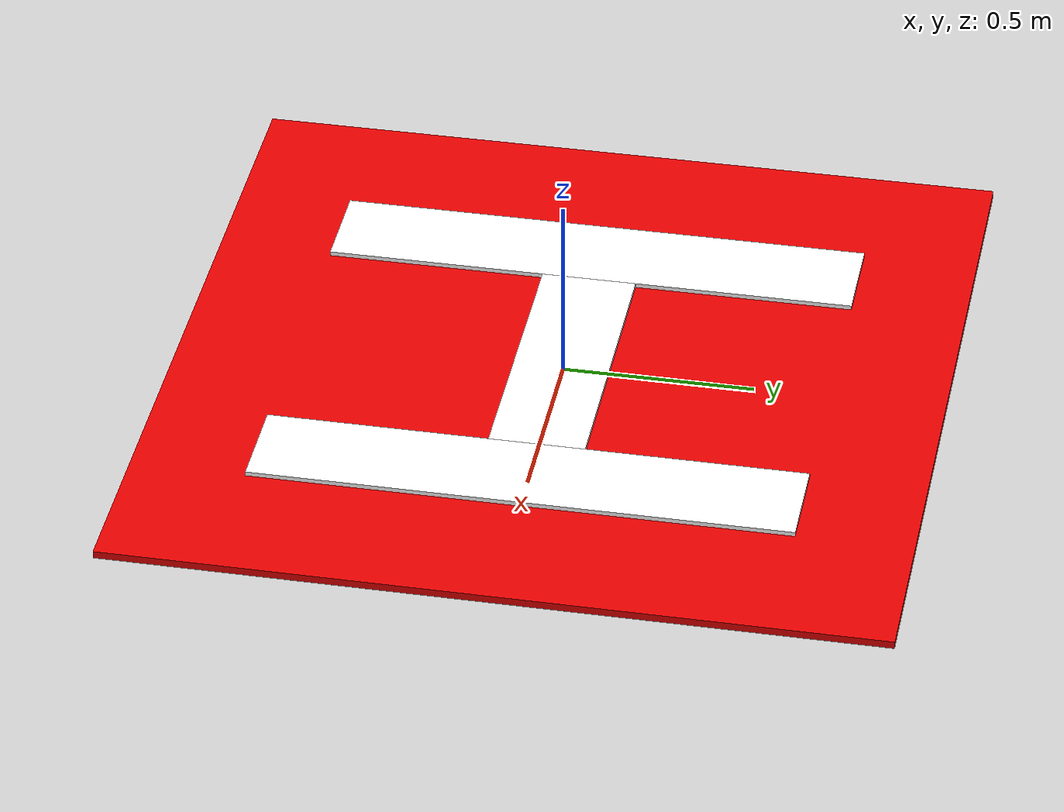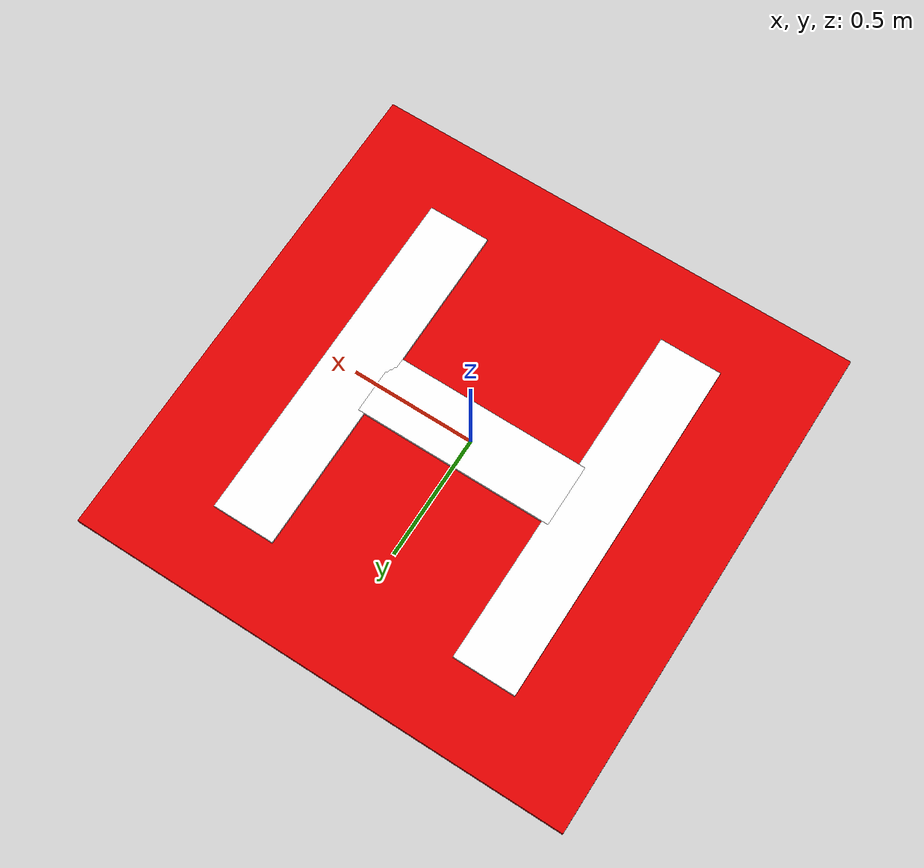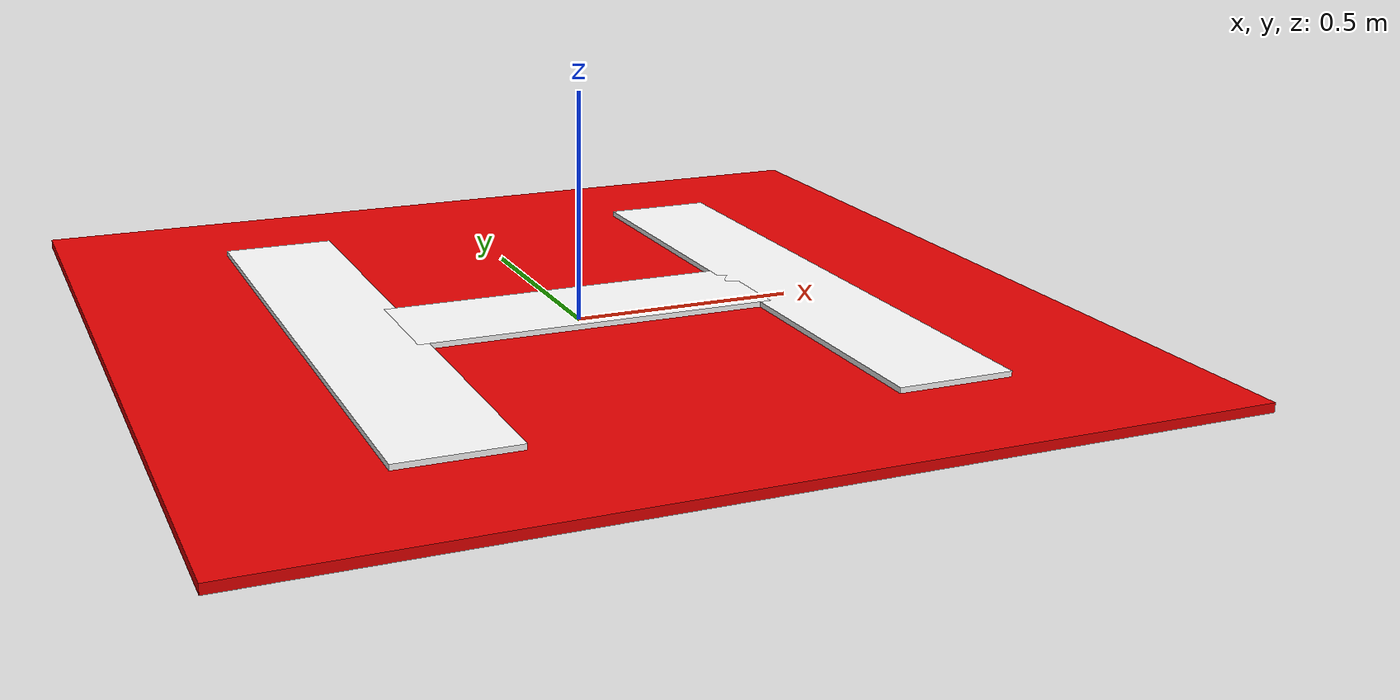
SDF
<?xml version="1.0" ?>
<sdf version="1.6">
  <model name="target_helipad">
    <static>true</static>
    <link name="base_link">

      <!-- 2x2m Kırmızı Zemin Plakası (Z: 0.02m) -->
      <visual name="red_base">
        <pose>0 0 0.01 0 0 0</pose>
        <geometry>
          <box><size>2.0 2.0 0.02</size></box>
        </geometry>
        <material>
          <ambient>0.8 0.0 0.0 1</ambient>
          <diffuse>0.9 0.0 0.0 1</diffuse>
          <specular>0.1 0.1 0.1 1</specular>
          <emissive>0.2 0.0 0.0 1</emissive>
        </material>
      </visual>

      <!-- Beyaz H Harfi - Sol Dikey Blok (Z tabanı: 0.02m üzerinde, yükseklik: 0.01m) -->
      <visual name="h_left_bar">
        <pose>-0.5 0 0.026 0 0 0</pose>
        <geometry>
          <box><size>0.25 1.4 0.012</size></box>
        </geometry>
        <material>
          <ambient>1 1 1 1</ambient>
          <diffuse>1 1 1 1</diffuse>
          <emissive>0.8 0.8 0.8 1</emissive>
        </material>
      </visual>

      <!-- Beyaz H Harfi - Sağ Dikey Blok -->
      <visual name="h_right_bar">
        <pose>0.5 0 0.026 0 0 0</pose>
        <geometry>
          <box><size>0.25 1.4 0.012</size></box>
        </geometry>
        <material>
          <ambient>1 1 1 1</ambient>
          <diffuse>1 1 1 1</diffuse>
          <emissive>0.8 0.8 0.8 1</emissive>
        </material>
      </visual>

      <!-- Beyaz H Harfi - Orta Yatay Blok -->
      <visual name="h_cross_bar">
        <pose>0 0 0.026 0 0 0</pose>
        <geometry>
          <box><size>0.8 0.25 0.012</size></box>
        </geometry>
        <material>
          <ambient>1 1 1 1</ambient>
          <diffuse>1 1 1 1</diffuse>
          <emissive>0.8 0.8 0.8 1</emissive>
        </material>
      </visual>

    </link>
  </model>
</sdf>
